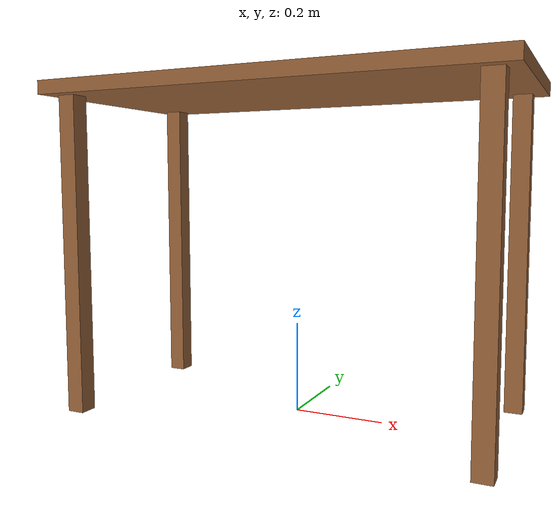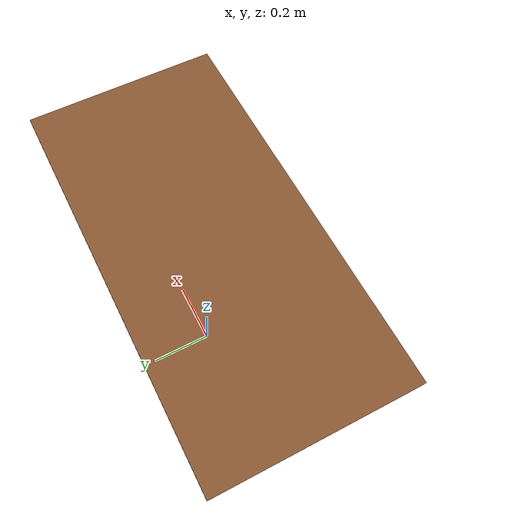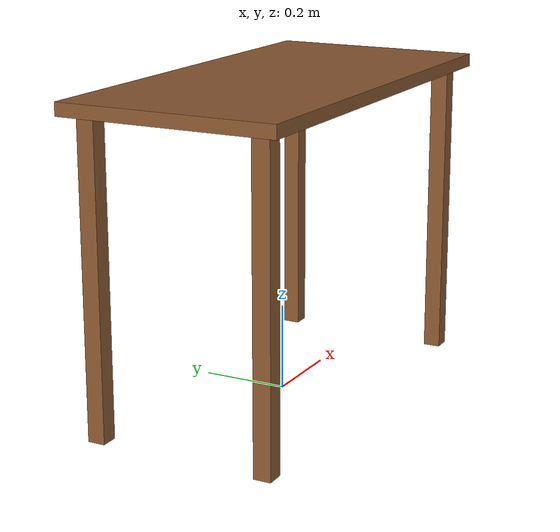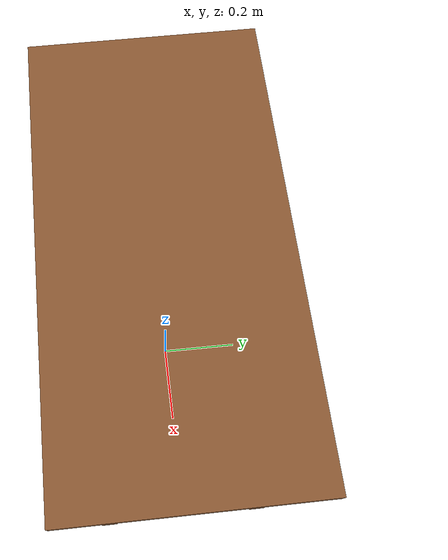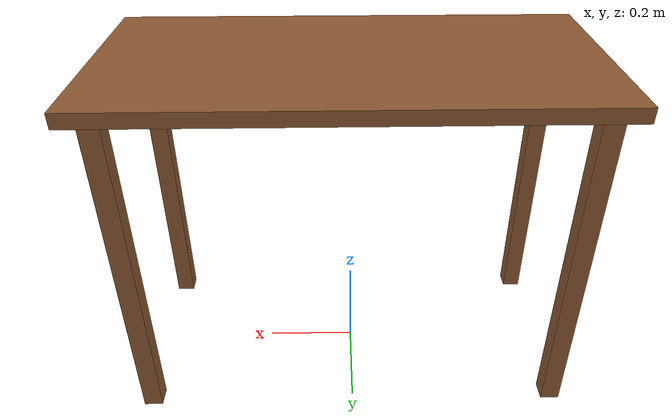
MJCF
<mujoco>
  <worldbody>
    <body name="desk">
      <geom name="desk_top" type="box" size="0.5 0.25 0.015" pos="0 0 0.72" rgba="0.55 0.35 0.2 1" contype="8" conaffinity="15"/>
      <geom name="desk_leg_fl" type="box" size="0.02 0.02 0.36" pos="-0.45 -0.2 0.36" rgba="0.55 0.35 0.2 1" contype="8" conaffinity="15"/>
      <geom name="desk_leg_fr" type="box" size="0.02 0.02 0.36" pos="0.45 -0.2 0.36" rgba="0.55 0.35 0.2 1" contype="8" conaffinity="15"/>
      <geom name="desk_leg_bl" type="box" size="0.02 0.02 0.36" pos="-0.45 0.2 0.36" rgba="0.55 0.35 0.2 1" contype="8" conaffinity="15"/>
      <geom name="desk_leg_br" type="box" size="0.02 0.02 0.36" pos="0.45 0.2 0.36" rgba="0.55 0.35 0.2 1" contype="8" conaffinity="15"/>
    </body>
  </worldbody>
</mujoco>
